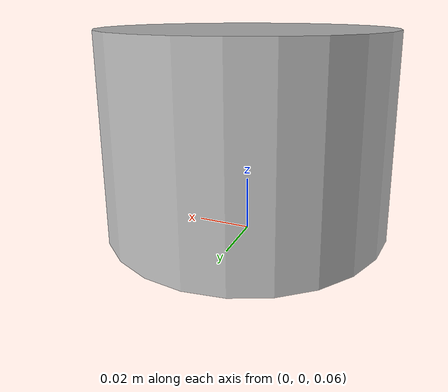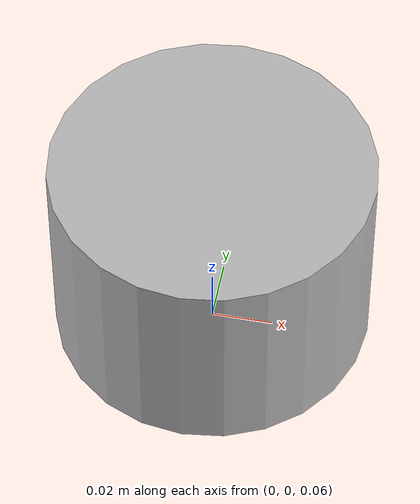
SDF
<?xml version='1.0'?>
<sdf version='1.6'>
  <model name='vlp-16'>
    <link name='base'>
      <sensor name='sensor' type='ray'>
        <pose frame=''>0 0 -0.004645 0 -0 0</pose>
        <visualize>1</visualize>
        <update_rate>30</update_rate>
        <ray>
          <noise>
            <type>gaussian</type>
            <mean>0</mean>
            <stddev>0.02</stddev>
          </noise>
          <scan>
            <horizontal>
              <samples>32</samples>
              <resolution>1</resolution>
              <min_angle>0</min_angle>
              <max_angle>6.28</max_angle>
            </horizontal>
            <vertical>
              <samples>32</samples>
              <resolution>1</resolution>
              <min_angle>-0.03</min_angle>
              <max_angle>0.03</max_angle>
            </vertical>
          </scan>
          <range>
            <min>0.07</min>
            <max>7</max>
            <resolution>0.02</resolution>
          </range>
        </ray>
      </sensor>
      <pose frame=''>-0 -0 0.1 0 -0 0</pose>
      <inertial>
        <mass>0.83</mass>
        <inertia>
          <ixx>0.000909131</ixx>
          <iyy>0.000909131</iyy>
          <izz>0.0011071</izz>
          <ixy>0</ixy>
          <ixz>0</ixz>
          <iyz>0</iyz>
        </inertia>
      </inertial>
      <self_collide>0</self_collide>
      <enable_wind>0</enable_wind>
      <kinematic>0</kinematic>
      <visual name='base_visual'>
        <geometry>
          <cylinder>
            <radius>0.0516</radius>
            <length>0.0717</length>
          </cylinder>
        </geometry>
        <pose frame=''>0 0 0 0 -0 0</pose>
        <transparency>0</transparency>
        <cast_shadows>1</cast_shadows>
      </visual>
      <collision name='base_collision'>
        <laser_retro>0</laser_retro>
        <max_contacts>10</max_contacts>
        <pose frame=''>0 0 0 0 -0 0</pose>
        <geometry>
          <cylinder>
            <radius>0.0516</radius>
            <length>0.0717</length>
          </cylinder>
        </geometry>
        <surface>
          <friction>
            <ode>
              <mu>1</mu>
              <mu2>1</mu2>
              <fdir1>0 0 0</fdir1>
              <slip1>0</slip1>
              <slip2>0</slip2>
            </ode>
            <torsional>
              <coefficient>1</coefficient>
              <patch_radius>0</patch_radius>
              <surface_radius>0</surface_radius>
              <use_patch_radius>1</use_patch_radius>
              <ode>
                <slip>0</slip>
              </ode>
            </torsional>
          </friction>
          <bounce>
            <restitution_coefficient>0</restitution_coefficient>
            <threshold>1e+06</threshold>
          </bounce>
          <contact>
            <collide_without_contact>0</collide_without_contact>
            <collide_without_contact_bitmask>1</collide_without_contact_bitmask>
            <collide_bitmask>1</collide_bitmask>
            <ode>
              <soft_cfm>0</soft_cfm>
              <soft_erp>0.2</soft_erp>
              <kp>1e+13</kp>
              <kd>1</kd>
              <max_vel>0.01</max_vel>
              <min_depth>0</min_depth>
            </ode>
            <bullet>
              <split_impulse>1</split_impulse>
              <split_impulse_penetration_threshold>-0.01</split_impulse_penetration_threshold>
              <soft_cfm>0</soft_cfm>
              <soft_erp>0.2</soft_erp>
              <kp>1e+13</kp>
              <kd>1</kd>
            </bullet>
          </contact>
        </surface>
      </collision>
    </link>
    <static>0</static>
    <allow_auto_disable>1</allow_auto_disable>
    <plugin name='gazebo_ros_laser_controller' filename='libgazebo_ros_velodyne_laser.so'/>
  </model>
</sdf>
